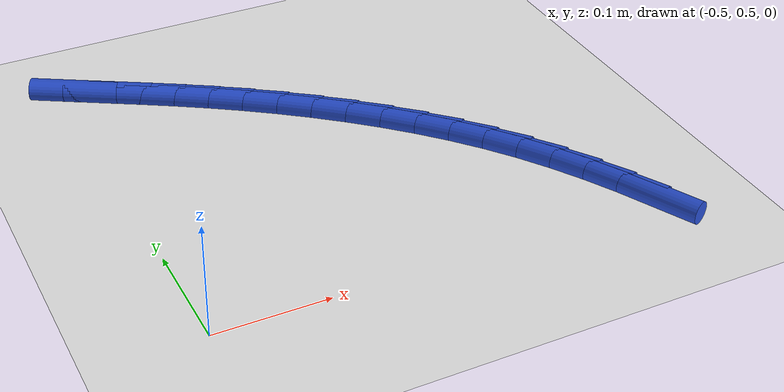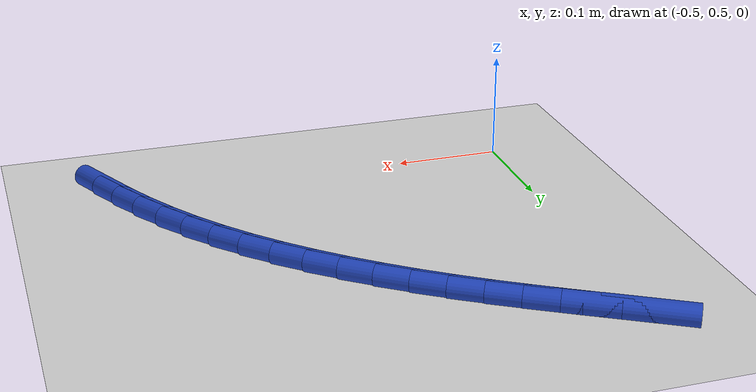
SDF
<sdf version="1.6">
 <world name="default">
  <model name="ground_plane">
   <static>1</static>
   <link name="link">
    <collision name="collision">
     <geometry><plane><normal>0 0 1</normal><size>100 100</size></plane></geometry>
     <surface><friction><ode><mu>100</mu><mu2>50</mu2></ode></friction></surface>
    </collision>
    <visual name="visual">
     <cast_shadows>0</cast_shadows>
     <geometry><plane><normal>0 0 1</normal><size>100 100</size></plane></geometry>
     <material>
      <script><uri>file://media/materials/scripts/gazebo.material</uri><name>Gazebo/WhiteGlow</name></script>
     </material>
    </visual>
   </link>
  </model>
  <model name="line">
   <link name="link_16">
    <pose>-0.11137014755510781 0.492580759944832 0.01 0 1.57 -1.1149162891457438</pose>
    <collision name="collision">
     <geometry><cylinder><radius>0.01</radius><length>0.08</length></cylinder></geometry>
    </collision>
    <visual name="visual">
     <material>
      <script><name>Gazebo/Blue</name><uri>file://media/materials/scripts/gazebo.material</uri></script>
     </material>
     <geometry><cylinder><radius>0.01</radius><length>0.08</length></cylinder></geometry>
    </visual>
   </link>
   <link name="link_17">
    <pose>-0.12527849127135163 0.5209461528922493 0.01 0 1.57 -1.070524265495265</pose>
    <collision name="collision">
     <geometry><cylinder><radius>0.01</radius><length>0.08</length></cylinder></geometry>
    </collision>
    <visual name="visual">
     <material>
      <script><name>Gazebo/Blue</name><uri>file://media/materials/scripts/gazebo.material</uri></script>
     </material>
     <geometry><cylinder><radius>0.01</radius><length>0.08</length></cylinder></geometry>
    </visual>
   </link>
   <link name="link_18">
    <pose>-0.14039019363781932 0.5485900604178819 0.01 0 1.57 -1.0221710814675207</pose>
    <collision name="collision">
     <geometry><cylinder><radius>0.01</radius><length>0.08</length></cylinder></geometry>
    </collision>
    <visual name="visual">
     <material>
      <script><name>Gazebo/Blue</name><uri>file://media/materials/scripts/gazebo.material</uri></script>
     </material>
     <geometry><cylinder><radius>0.01</radius><length>0.08</length></cylinder></geometry>
    </visual>
   </link>
   <link name="link_19">
    <pose>-0.1567929469345779 0.5754263548576675 0.01 0 1.57 -0.9699240420496735</pose>
    <collision name="collision">
     <geometry><cylinder><radius>0.01</radius><length>0.08</length></cylinder></geometry>
    </collision>
    <visual name="visual">
     <material>
      <script><name>Gazebo/Blue</name><uri>file://media/materials/scripts/gazebo.material</uri></script>
     </material>
     <geometry><cylinder><radius>0.01</radius><length>0.08</length></cylinder></geometry>
    </visual>
   </link>
   <link name="link_20">
    <pose>-0.1745744434416945 0.6013689085475447 0.01 0 1.57 -0.9144297529021951</pose>
    <collision name="collision">
     <geometry><cylinder><radius>0.01</radius><length>0.08</length></cylinder></geometry>
    </collision>
    <visual name="visual">
     <material>
      <script><name>Gazebo/Blue</name><uri>file://media/materials/scripts/gazebo.material</uri></script>
     </material>
     <geometry><cylinder><radius>0.01</radius><length>0.08</length></cylinder></geometry>
    </visual>
   </link>
   <link name="link_21">
    <pose>-0.1938078844427915 0.6263376986353224 0.01 0 1.57 -0.8604891405685786</pose>
    <collision name="collision">
     <geometry><cylinder><radius>0.01</radius><length>0.08</length></cylinder></geometry>
    </collision>
    <visual name="visual">
     <material>
      <script><name>Gazebo/Blue</name><uri>file://media/materials/scripts/gazebo.material</uri></script>
     </material>
     <geometry><cylinder><radius>0.01</radius><length>0.08</length></cylinder></geometry>
    </visual>
   </link>
   <link name="link_22">
    <pose>-0.2144268732661305 0.6503115125278844 0.01 0 1.57 -0.8105958679355366</pose>
    <collision name="collision">
     <geometry><cylinder><radius>0.01</radius><length>0.08</length></cylinder></geometry>
    </collision>
    <visual name="visual">
     <material>
      <script><name>Gazebo/Blue</name><uri>file://media/materials/scripts/gazebo.material</uri></script>
     </material>
     <geometry><cylinder><radius>0.01</radius><length>0.08</length></cylinder></geometry>
    </visual>
   </link>
   <link name="link_23">
    <pose>-0.2362869945524651 0.6733020055864684 0.01 0 1.57 -0.764571923039052</pose>
    <collision name="collision">
     <geometry><cylinder><radius>0.01</radius><length>0.08</length></cylinder></geometry>
    </collision>
    <visual name="visual">
     <material>
      <script><name>Gazebo/Blue</name><uri>file://media/materials/scripts/gazebo.material</uri></script>
     </material>
     <geometry><cylinder><radius>0.01</radius><length>0.08</length></cylinder></geometry>
    </visual>
   </link>
   <link name="link_24">
    <pose>-0.25924298046999433 0.6953211923045908 0.01 0 1.57 -0.7221756437003981</pose>
    <collision name="collision">
     <geometry><cylinder><radius>0.01</radius><length>0.08</length></cylinder></geometry>
    </collision>
    <visual name="visual">
     <material>
      <script><name>Gazebo/Blue</name><uri>file://media/materials/scripts/gazebo.material</uri></script>
     </material>
     <geometry><cylinder><radius>0.01</radius><length>0.08</length></cylinder></geometry>
    </visual>
   </link>
   <link name="link_25">
    <pose>-0.2831495631869171 0.7163810871757685 0.01 0 1.57 -0.6831493544724059</pose>
    <collision name="collision">
     <geometry><cylinder><radius>0.01</radius><length>0.08</length></cylinder></geometry>
    </collision>
    <visual name="visual">
     <material>
      <script><name>Gazebo/Blue</name><uri>file://media/materials/scripts/gazebo.material</uri></script>
     </material>
     <geometry><cylinder><radius>0.01</radius><length>0.08</length></cylinder></geometry>
    </visual>
   </link>
   <link name="link_26">
    <pose>-0.30786147487143245 0.736493704693518 0.01 0 1.57 -0.6472333285248579</pose>
    <collision name="collision">
     <geometry><cylinder><radius>0.01</radius><length>0.08</length></cylinder></geometry>
    </collision>
    <visual name="visual">
     <material>
      <script><name>Gazebo/Blue</name><uri>file://media/materials/scripts/gazebo.material</uri></script>
     </material>
     <geometry><cylinder><radius>0.01</radius><length>0.08</length></cylinder></geometry>
    </visual>
   </link>
   <link name="link_27">
    <pose>-0.33323344769173946 0.7556710593513561 0.01 0 1.57 -0.6141753557104128</pose>
    <collision name="collision">
     <geometry><cylinder><radius>0.01</radius><length>0.08</length></cylinder></geometry>
    </collision>
    <visual name="visual">
     <material>
      <script><name>Gazebo/Blue</name><uri>file://media/materials/scripts/gazebo.material</uri></script>
     </material>
     <geometry><cylinder><radius>0.01</radius><length>0.08</length></cylinder></geometry>
    </visual>
   </link>
   <link name="link_28">
    <pose>-0.359120213816037 0.7739251656427995 0.01 0 1.57 -0.5837369270911804</pose>
    <collision name="collision">
     <geometry><cylinder><radius>0.01</radius><length>0.08</length></cylinder></geometry>
    </collision>
    <visual name="visual">
     <material>
      <script><name>Gazebo/Blue</name><uri>file://media/materials/scripts/gazebo.material</uri></script>
     </material>
     <geometry><cylinder><radius>0.01</radius><length>0.08</length></cylinder></geometry>
    </visual>
   </link>
   <link name="link_29">
    <pose>-0.38537650583038136 0.791268039102548 0.01 0 1.57 -0.5566629691196182</pose>
    <collision name="collision">
     <geometry><cylinder><radius>0.01</radius><length>0.08</length></cylinder></geometry>
    </collision>
    <visual name="visual">
     <material>
      <script><name>Gazebo/Blue</name><uri>file://media/materials/scripts/gazebo.material</uri></script>
     </material>
     <geometry><cylinder><radius>0.01</radius><length>0.08</length></cylinder></geometry>
    </visual>
   </link>
   <link name="link_30">
    <pose>-0.4118760296805622 0.8077589715701352 0.01 0 1.57 -0.5365555119013853</pose>
    <collision name="collision">
     <geometry><cylinder><radius>0.01</radius><length>0.08</length></cylinder></geometry>
    </collision>
    <visual name="visual">
     <material>
      <script><name>Gazebo/Blue</name><uri>file://media/materials/scripts/gazebo.material</uri></script>
     </material>
     <geometry><cylinder><radius>0.01</radius><length>0.08</length></cylinder></geometry>
    </visual>
   </link>
   <link name="link_31">
    <pose>-0.43856210064839085 0.8236307018778918 0.01 0 1.57 -0.5245383648477828</pose>
    <collision name="collision">
     <geometry><cylinder><radius>0.01</radius><length>0.08</length></cylinder></geometry>
    </collision>
    <visual name="visual">
     <material>
      <script><name>Gazebo/Blue</name><uri>file://media/materials/scripts/gazebo.material</uri></script>
     </material>
     <geometry><cylinder><radius>0.01</radius><length>0.08</length></cylinder></geometry>
    </visual>
   </link>
   <link name="link_32">
    <pose>-0.46539399343498583 0.8391557352665624 0.01 0 1.57 -0.5207754905481475</pose>
    <collision name="collision">
     <geometry><cylinder><radius>0.01</radius><length>0.08</length></cylinder></geometry>
    </collision>
    <visual name="visual">
     <material>
      <script><name>Gazebo/Blue</name><uri>file://media/materials/scripts/gazebo.material</uri></script>
     </material>
     <geometry><cylinder><radius>0.01</radius><length>0.08</length></cylinder></geometry>
    </visual>
   </link>
   <link name="link_33">
    <pose>-0.4923309827414663 0.8546065769768924 0.01 0 1.57 -0.5252613290431674</pose>
    <collision name="collision">
     <geometry><cylinder><radius>0.01</radius><length>0.08</length></cylinder></geometry>
    </collision>
    <visual name="visual">
     <material>
      <script><name>Gazebo/Blue</name><uri>file://media/materials/scripts/gazebo.material</uri></script>
     </material>
     <geometry><cylinder><radius>0.01</radius><length>0.08</length></cylinder></geometry>
    </visual>
   </link>
  </model>
 </world>
</sdf>
